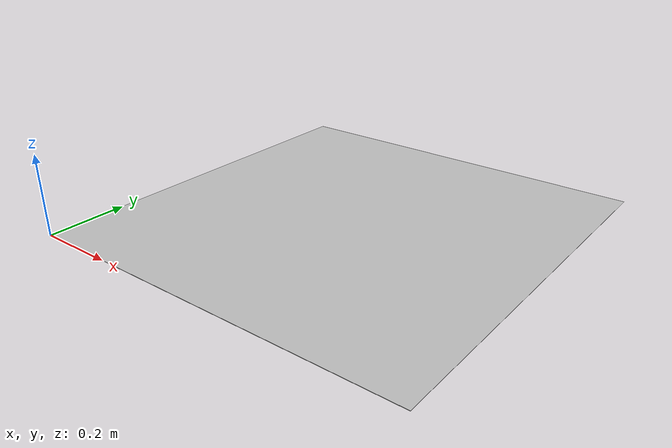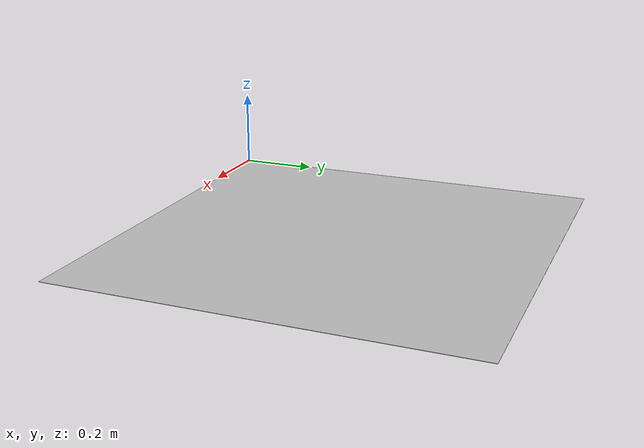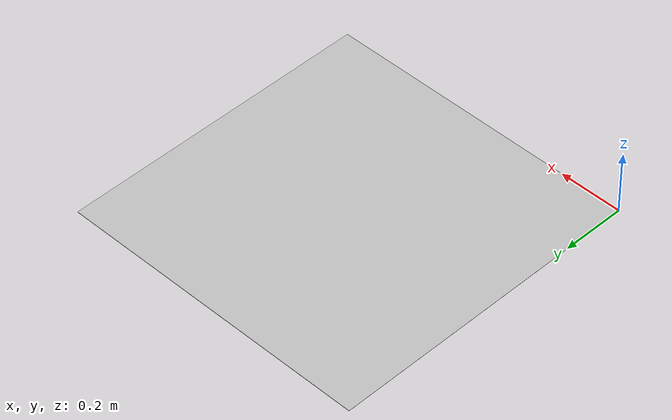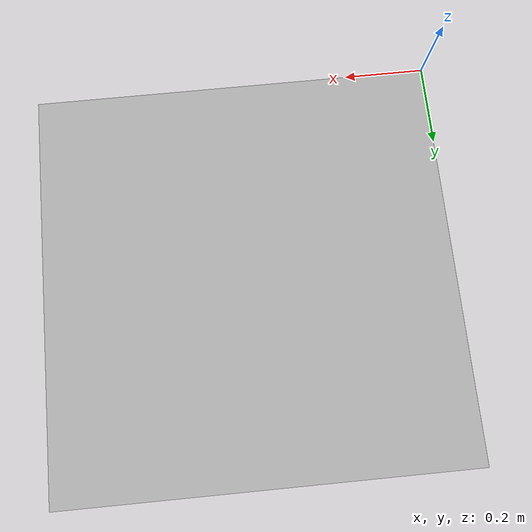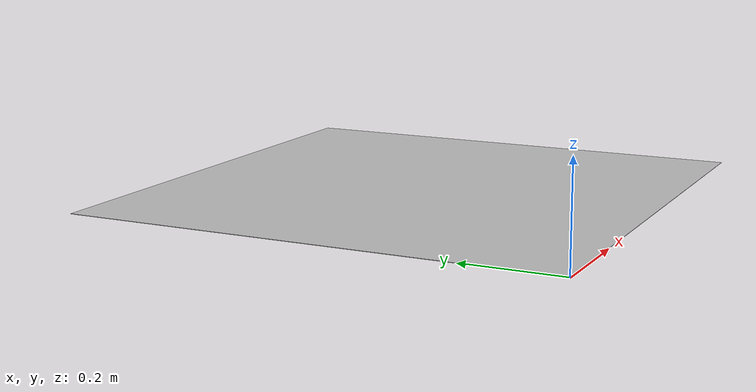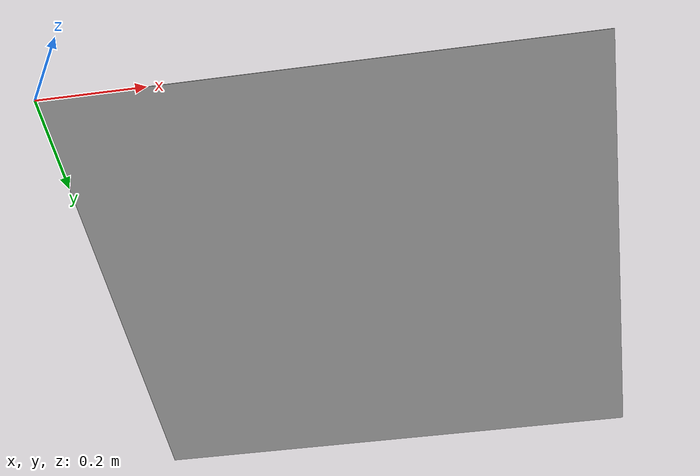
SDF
<?xml version="1.0" ?>
<sdf version="1.7">
    <model name="aruco_tag_124">
        <static>true</static>
        <pose>0 0 0 0 0 0</pose>
        <link name="link">
            <visual name="visual">
                <geometry>
                    <mesh>
                        <uri>model://aruco_tag_124/meshes/aruco_tag_124.obj</uri>
                    </mesh>
                </geometry>
            </visual>
        </link>
    </model>
</sdf>
